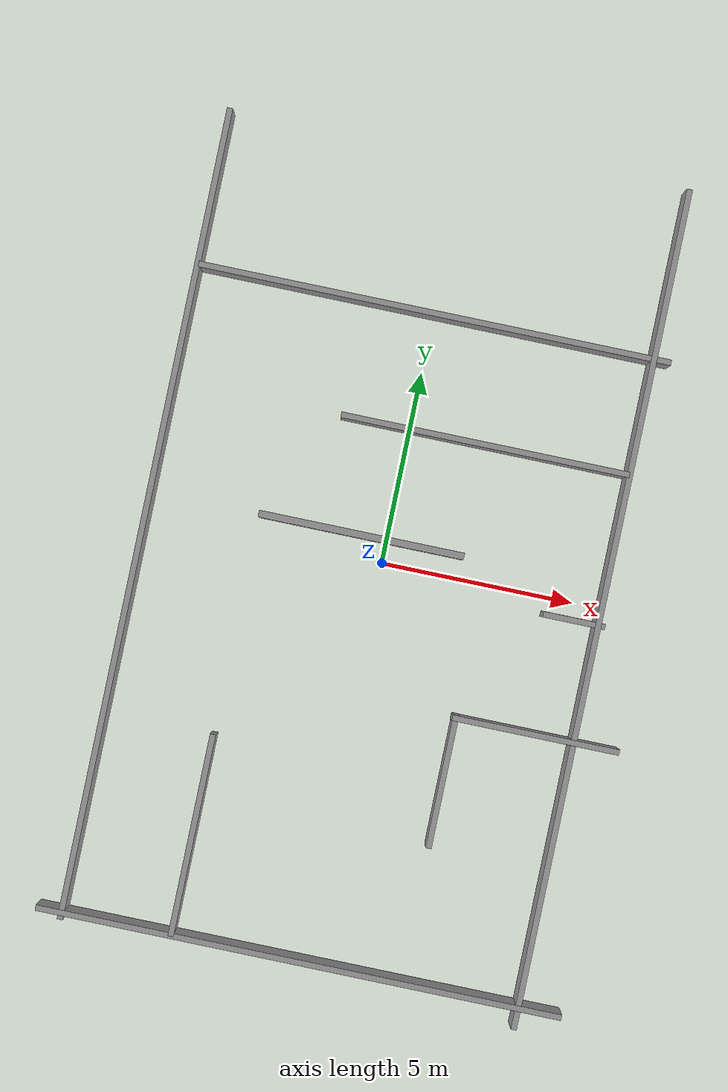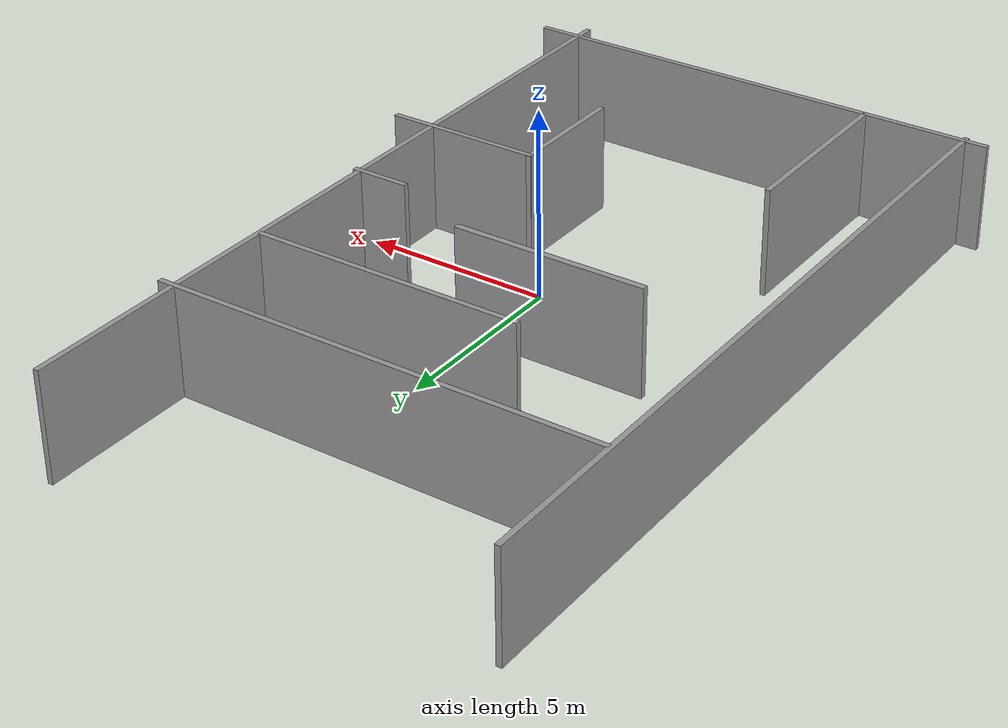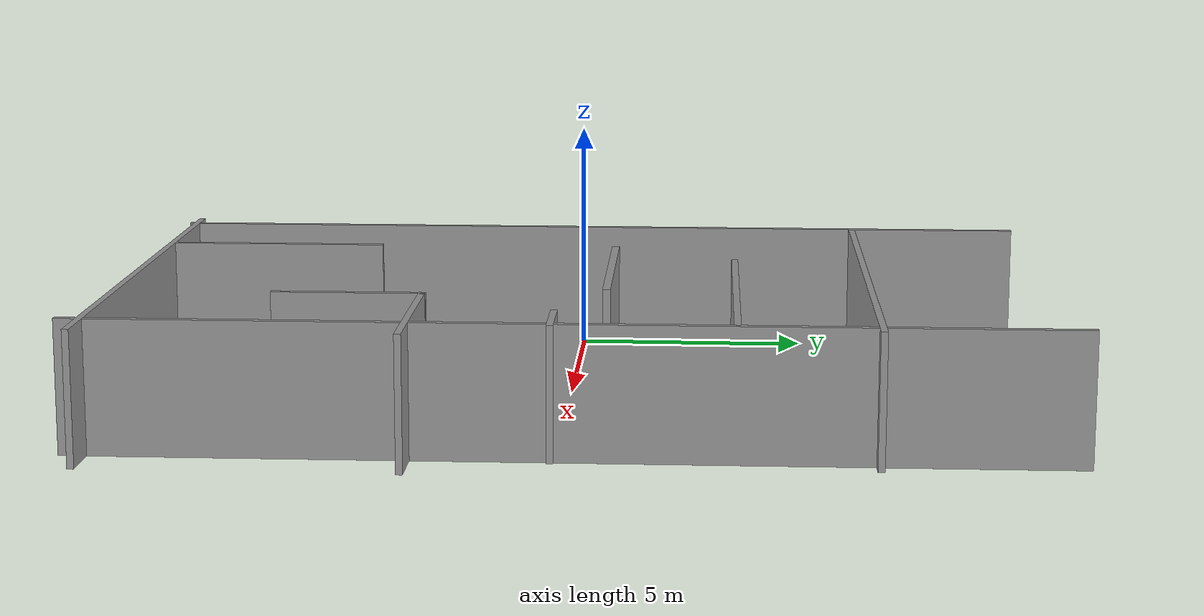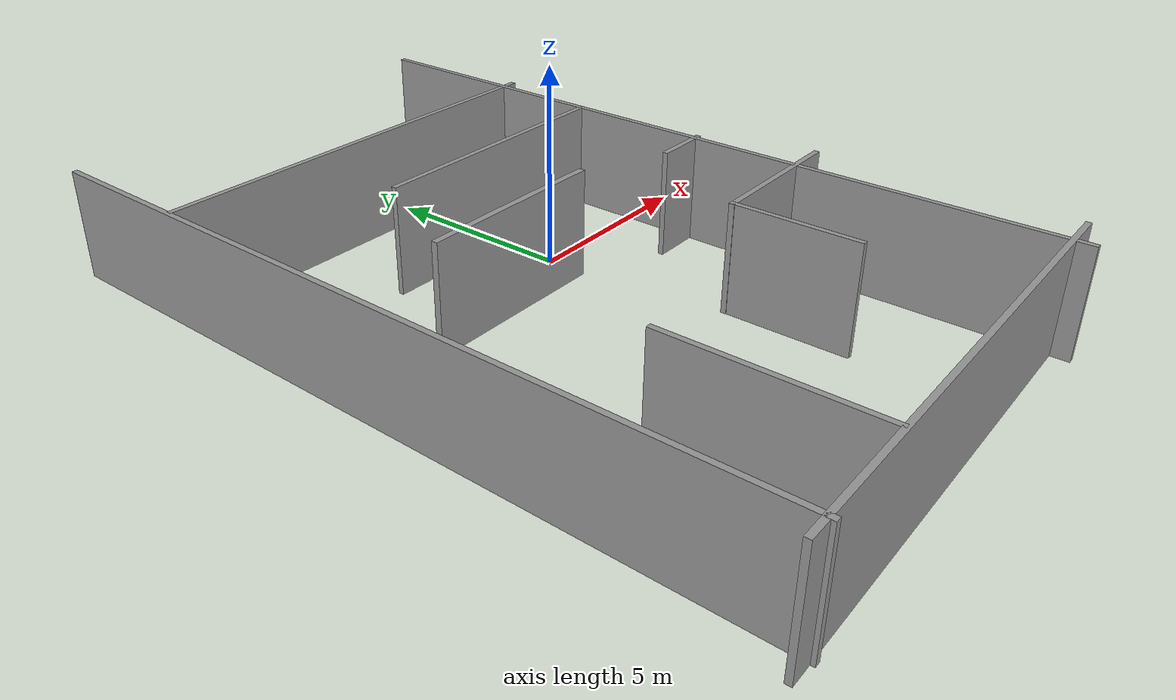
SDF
<?xml version='1.0'?>
<sdf version='1.7'>
  <model name='maze_medium_spacious'>
    <link name='Wall_11'>
      <pose>5.10281 -0.422662 0 0 -0 0</pose>
      <self_collide>0</self_collide>
      <enable_wind>0</enable_wind>
      <kinematic>0</kinematic>
      <inertial>
        <inertia>
          <ixx>0</ixx>
          <ixy>0</ixy>
          <ixz>0</ixz>
          <iyy>0</iyy>
          <iyz>0</iyz>
          <izz>0</izz>
        </inertia>
        <mass>0</mass>
        <pose>0 0 0 0 -0 0</pose>
      </inertial>
      <gravity>1</gravity>
      <visual name='Wall_11_Visual'>
        <pose>0 0 0.15 0 -0 0</pose>
        <geometry>
          <box>
            <size>1.61952 0.15 3</size>
          </box>
        </geometry>
        <material>
          <script>
            <uri>file://media/materials/scripts/gazebo.material</uri>
            <name>Gazebo/Grey</name>
          </script>
          <ambient>1 1 1 1</ambient>
          <shader type='pixel'>
            <normal_map>__default__</normal_map>
          </shader>
        </material>
        <meta>
          <layer>0</layer>
        </meta>
        <transparency>0</transparency>
        <cast_shadows>1</cast_shadows>
      </visual>
      <collision name='Wall_11_Collision'>
        <laser_retro>0</laser_retro>
        <max_contacts>10</max_contacts>
        <pose>0 0 0.15 0 -0 0</pose>
        <geometry>
          <box>
            <size>1.61952 0.15 3</size>
          </box>
        </geometry>
        <surface>
          <friction>
            <ode>
              <mu>1</mu>
              <mu2>1</mu2>
              <fdir1>0 0 0</fdir1>
              <slip1>0</slip1>
              <slip2>0</slip2>
            </ode>
            <torsional>
              <coefficient>1</coefficient>
              <patch_radius>0</patch_radius>
              <surface_radius>0</surface_radius>
              <use_patch_radius>1</use_patch_radius>
              <ode>
                <slip>0</slip>
              </ode>
            </torsional>
          </friction>
          <bounce>
            <restitution_coefficient>0</restitution_coefficient>
            <threshold>1e+06</threshold>
          </bounce>
          <contact>
            <collide_without_contact>0</collide_without_contact>
            <collide_without_contact_bitmask>1</collide_without_contact_bitmask>
            <collide_bitmask>1</collide_bitmask>
            <ode>
              <soft_cfm>0</soft_cfm>
              <soft_erp>0.2</soft_erp>
              <kp>1e+13</kp>
              <kd>1</kd>
              <max_vel>0.01</max_vel>
              <min_depth>0</min_depth>
            </ode>
            <bullet>
              <split_impulse>1</split_impulse>
              <split_impulse_penetration_threshold>-0.01</split_impulse_penetration_threshold>
              <soft_cfm>0</soft_cfm>
              <soft_erp>0.2</soft_erp>
              <kp>1e+13</kp>
              <kd>1</kd>
            </bullet>
          </contact>
        </surface>
      </collision>
    </link>
    <link name='Wall_11_clone'>
      <pose>1.95867 3.5092 0 0 -0 0</pose>
      <self_collide>0</self_collide>
      <enable_wind>0</enable_wind>
      <kinematic>0</kinematic>
      <inertial>
        <inertia>
          <ixx>0</ixx>
          <ixy>0</ixy>
          <ixz>0</ixz>
          <iyy>0</iyy>
          <iyz>0</iyz>
          <izz>0</izz>
        </inertia>
        <mass>0</mass>
        <pose>0 0 0 0 -0 0</pose>
      </inertial>
      <visual name='Wall_11_Visual'>
        <pose>0 0 0.15 0 -0 0</pose>
        <geometry>
          <box>
            <size>7.52703 0.15 3</size>
          </box>
        </geometry>
        <material>
          <script>
            <uri>file://media/materials/scripts/gazebo.material</uri>
            <name>Gazebo/Grey</name>
          </script>
          <ambient>1 1 1 1</ambient>
          <shader type='pixel'/>
        </material>
        <meta>
          <layer>0</layer>
        </meta>
        <transparency>0</transparency>
        <cast_shadows>1</cast_shadows>
      </visual>
      <collision name='Wall_11_Collision'>
        <laser_retro>0</laser_retro>
        <max_contacts>10</max_contacts>
        <pose>0 0 0.15 0 -0 0</pose>
        <geometry>
          <box>
            <size>7.52703 0.15 3</size>
          </box>
        </geometry>
        <surface>
          <friction>
            <ode>
              <mu>1</mu>
              <mu2>1</mu2>
              <fdir1>0 0 0</fdir1>
              <slip1>0</slip1>
              <slip2>0</slip2>
            </ode>
            <torsional>
              <coefficient>1</coefficient>
              <patch_radius>0</patch_radius>
              <surface_radius>0</surface_radius>
              <use_patch_radius>1</use_patch_radius>
              <ode>
                <slip>0</slip>
              </ode>
            </torsional>
          </friction>
          <bounce>
            <restitution_coefficient>0</restitution_coefficient>
            <threshold>1e+06</threshold>
          </bounce>
          <contact>
            <collide_without_contact>0</collide_without_contact>
            <collide_without_contact_bitmask>1</collide_without_contact_bitmask>
            <collide_bitmask>1</collide_bitmask>
            <ode>
              <soft_cfm>0</soft_cfm>
              <soft_erp>0.2</soft_erp>
              <kp>1e+13</kp>
              <kd>1</kd>
              <max_vel>0.01</max_vel>
              <min_depth>0</min_depth>
            </ode>
            <bullet>
              <split_impulse>1</split_impulse>
              <split_impulse_penetration_threshold>-0.01</split_impulse_penetration_threshold>
              <soft_cfm>0</soft_cfm>
              <soft_erp>0.2</soft_erp>
              <kp>1e+13</kp>
              <kd>1</kd>
            </bullet>
          </contact>
        </surface>
      </collision>
    </link>
    <link name='Wall_11_clone_0'>
      <pose>4.74482 -3.48754 0 0 -0 0</pose>
      <self_collide>0</self_collide>
      <enable_wind>0</enable_wind>
      <kinematic>0</kinematic>
      <inertial>
        <inertia>
          <ixx>0</ixx>
          <ixy>0</ixy>
          <ixz>0</ixz>
          <iyy>0</iyy>
          <iyz>0</iyz>
          <izz>0</izz>
        </inertia>
        <mass>0</mass>
        <pose>0 0 0 0 -0 0</pose>
      </inertial>
      <visual name='Wall_11_Visual'>
        <pose>0 0 0.15 0 -0 0</pose>
        <geometry>
          <box>
            <size>4.36242 0.15 3</size>
          </box>
        </geometry>
        <material>
          <script>
            <uri>file://media/materials/scripts/gazebo.material</uri>
            <name>Gazebo/Grey</name>
          </script>
          <ambient>1 1 1 1</ambient>
          <shader type='pixel'/>
        </material>
        <meta>
          <layer>0</layer>
        </meta>
        <transparency>0</transparency>
        <cast_shadows>1</cast_shadows>
      </visual>
      <collision name='Wall_11_Collision'>
        <laser_retro>0</laser_retro>
        <max_contacts>10</max_contacts>
        <pose>0 0 0.15 0 -0 0</pose>
        <geometry>
          <box>
            <size>4.36242 0.15 3</size>
          </box>
        </geometry>
        <surface>
          <friction>
            <ode>
              <mu>1</mu>
              <mu2>1</mu2>
              <fdir1>0 0 0</fdir1>
              <slip1>0</slip1>
              <slip2>0</slip2>
            </ode>
            <torsional>
              <coefficient>1</coefficient>
              <patch_radius>0</patch_radius>
              <surface_radius>0</surface_radius>
              <use_patch_radius>1</use_patch_radius>
              <ode>
                <slip>0</slip>
              </ode>
            </torsional>
          </friction>
          <bounce>
            <restitution_coefficient>0</restitution_coefficient>
            <threshold>1e+06</threshold>
          </bounce>
          <contact>
            <collide_without_contact>0</collide_without_contact>
            <collide_without_contact_bitmask>1</collide_without_contact_bitmask>
            <collide_bitmask>1</collide_bitmask>
            <ode>
              <soft_cfm>0</soft_cfm>
              <soft_erp>0.2</soft_erp>
              <kp>1e+13</kp>
              <kd>1</kd>
              <max_vel>0.01</max_vel>
              <min_depth>0</min_depth>
            </ode>
            <bullet>
              <split_impulse>1</split_impulse>
              <split_impulse_penetration_threshold>-0.01</split_impulse_penetration_threshold>
              <soft_cfm>0</soft_cfm>
              <soft_erp>0.2</soft_erp>
              <kp>1e+13</kp>
              <kd>1</kd>
            </bullet>
          </contact>
        </surface>
      </collision>
    </link>
    <link name='Wall_12'>
      <pose>2.65231 -5.14363 0 0 0 -1.5708</pose>
      <self_collide>0</self_collide>
      <enable_wind>0</enable_wind>
      <kinematic>0</kinematic>
      <inertial>
        <inertia>
          <ixx>0</ixx>
          <ixy>0</ixy>
          <ixz>0</ixz>
          <iyy>0</iyy>
          <iyz>0</iyz>
          <izz>0</izz>
        </inertia>
        <mass>0</mass>
        <pose>0 0 0 0 -0 0</pose>
      </inertial>
      <visual name='Wall_12_Visual'>
        <pose>0 0 0.15 0 -0 0</pose>
        <geometry>
          <box>
            <size>3.4719 0.15 3</size>
          </box>
        </geometry>
        <material>
          <script>
            <uri>file://media/materials/scripts/gazebo.material</uri>
            <name>Gazebo/Grey</name>
          </script>
          <ambient>1 1 1 1</ambient>
          <shader type='pixel'/>
        </material>
        <meta>
          <layer>0</layer>
        </meta>
        <transparency>0</transparency>
        <cast_shadows>1</cast_shadows>
      </visual>
      <collision name='Wall_12_Collision'>
        <laser_retro>0</laser_retro>
        <max_contacts>10</max_contacts>
        <pose>0 0 0.15 0 -0 0</pose>
        <geometry>
          <box>
            <size>3.4719 0.15 3</size>
          </box>
        </geometry>
        <surface>
          <friction>
            <ode>
              <mu>1</mu>
              <mu2>1</mu2>
              <fdir1>0 0 0</fdir1>
              <slip1>0</slip1>
              <slip2>0</slip2>
            </ode>
            <torsional>
              <coefficient>1</coefficient>
              <patch_radius>0</patch_radius>
              <surface_radius>0</surface_radius>
              <use_patch_radius>1</use_patch_radius>
              <ode>
                <slip>0</slip>
              </ode>
            </torsional>
          </friction>
          <bounce>
            <restitution_coefficient>0</restitution_coefficient>
            <threshold>1e+06</threshold>
          </bounce>
          <contact>
            <collide_without_contact>0</collide_without_contact>
            <collide_without_contact_bitmask>1</collide_without_contact_bitmask>
            <collide_bitmask>1</collide_bitmask>
            <ode>
              <soft_cfm>0</soft_cfm>
              <soft_erp>0.2</soft_erp>
              <kp>1e+13</kp>
              <kd>1</kd>
              <max_vel>0.01</max_vel>
              <min_depth>0</min_depth>
            </ode>
            <bullet>
              <split_impulse>1</split_impulse>
              <split_impulse_penetration_threshold>-0.01</split_impulse_penetration_threshold>
              <soft_cfm>0</soft_cfm>
              <soft_erp>0.2</soft_erp>
              <kp>1e+13</kp>
              <kd>1</kd>
            </bullet>
          </contact>
        </surface>
      </collision>
    </link>
    <link name='Wall_12_clone'>
      <pose>-3.33045 -7.79527 0 0 0 -1.5708</pose>
      <self_collide>0</self_collide>
      <enable_wind>0</enable_wind>
      <kinematic>0</kinematic>
      <inertial>
        <inertia>
          <ixx>0</ixx>
          <ixy>0</ixy>
          <ixz>0</ixz>
          <iyy>0</iyy>
          <iyz>0</iyz>
          <izz>0</izz>
        </inertia>
        <mass>0</mass>
        <pose>0 0 0 0 -0 0</pose>
      </inertial>
      <visual name='Wall_12_Visual'>
        <pose>0 0 0.15 0 -0 0</pose>
        <geometry>
          <box>
            <size>5.27052 0.15 3</size>
          </box>
        </geometry>
        <material>
          <script>
            <uri>file://media/materials/scripts/gazebo.material</uri>
            <name>Gazebo/Grey</name>
          </script>
          <ambient>1 1 1 1</ambient>
          <shader type='pixel'/>
        </material>
        <meta>
          <layer>0</layer>
        </meta>
        <transparency>0</transparency>
        <cast_shadows>1</cast_shadows>
      </visual>
      <collision name='Wall_12_Collision'>
        <laser_retro>0</laser_retro>
        <max_contacts>10</max_contacts>
        <pose>0 0 0.15 0 -0 0</pose>
        <geometry>
          <box>
            <size>5.27052 0.15 3</size>
          </box>
        </geometry>
        <surface>
          <friction>
            <ode>
              <mu>1</mu>
              <mu2>1</mu2>
              <fdir1>0 0 0</fdir1>
              <slip1>0</slip1>
              <slip2>0</slip2>
            </ode>
            <torsional>
              <coefficient>1</coefficient>
              <patch_radius>0</patch_radius>
              <surface_radius>0</surface_radius>
              <use_patch_radius>1</use_patch_radius>
              <ode>
                <slip>0</slip>
              </ode>
            </torsional>
          </friction>
          <bounce>
            <restitution_coefficient>0</restitution_coefficient>
            <threshold>1e+06</threshold>
          </bounce>
          <contact>
            <collide_without_contact>0</collide_without_contact>
            <collide_without_contact_bitmask>1</collide_without_contact_bitmask>
            <collide_bitmask>1</collide_bitmask>
            <ode>
              <soft_cfm>0</soft_cfm>
              <soft_erp>0.2</soft_erp>
              <kp>1e+13</kp>
              <kd>1</kd>
              <max_vel>0.01</max_vel>
              <min_depth>0</min_depth>
            </ode>
            <bullet>
              <split_impulse>1</split_impulse>
              <split_impulse_penetration_threshold>-0.01</split_impulse_penetration_threshold>
              <soft_cfm>0</soft_cfm>
              <soft_erp>0.2</soft_erp>
              <kp>1e+13</kp>
              <kd>1</kd>
            </bullet>
          </contact>
        </surface>
      </collision>
    </link>
    <link name='Wall_4'>
      <pose>0.00675 -10.4191 0 0 -0 0</pose>
      <self_collide>0</self_collide>
      <enable_wind>0</enable_wind>
      <kinematic>0</kinematic>
      <inertial>
        <inertia>
          <ixx>0</ixx>
          <ixy>0</ixy>
          <ixz>0</ixz>
          <iyy>0</iyy>
          <iyz>0</iyz>
          <izz>0</izz>
        </inertia>
        <mass>0</mass>
        <pose>0 0 0 0 -0 0</pose>
      </inertial>
      <visual name='Wall_4_Visual'>
        <pose>0 0 0.15 0 -0 0</pose>
        <geometry>
          <box>
            <size>13.7227 0.15 3</size>
          </box>
        </geometry>
        <material>
          <script>
            <uri>file://media/materials/scripts/gazebo.material</uri>
            <name>Gazebo/Grey</name>
          </script>
          <ambient>1 1 1 1</ambient>
          <shader type='pixel'/>
        </material>
        <meta>
          <layer>0</layer>
        </meta>
        <transparency>0</transparency>
        <cast_shadows>1</cast_shadows>
      </visual>
      <collision name='Wall_4_Collision'>
        <laser_retro>0</laser_retro>
        <max_contacts>10</max_contacts>
        <pose>0 0 0.15 0 -0 0</pose>
        <geometry>
          <box>
            <size>13.7227 0.15 3</size>
          </box>
        </geometry>
        <surface>
          <friction>
            <ode>
              <mu>1</mu>
              <mu2>1</mu2>
              <fdir1>0 0 0</fdir1>
              <slip1>0</slip1>
              <slip2>0</slip2>
            </ode>
            <torsional>
              <coefficient>1</coefficient>
              <patch_radius>0</patch_radius>
              <surface_radius>0</surface_radius>
              <use_patch_radius>1</use_patch_radius>
              <ode>
                <slip>0</slip>
              </ode>
            </torsional>
          </friction>
          <bounce>
            <restitution_coefficient>0</restitution_coefficient>
            <threshold>1e+06</threshold>
          </bounce>
          <contact>
            <collide_without_contact>0</collide_without_contact>
            <collide_without_contact_bitmask>1</collide_without_contact_bitmask>
            <collide_bitmask>1</collide_bitmask>
            <ode>
              <soft_cfm>0</soft_cfm>
              <soft_erp>0.2</soft_erp>
              <kp>1e+13</kp>
              <kd>1</kd>
              <max_vel>0.01</max_vel>
              <min_depth>0</min_depth>
            </ode>
            <bullet>
              <split_impulse>1</split_impulse>
              <split_impulse_penetration_threshold>-0.01</split_impulse_penetration_threshold>
              <soft_cfm>0</soft_cfm>
              <soft_erp>0.2</soft_erp>
              <kp>1e+13</kp>
              <kd>1</kd>
            </bullet>
          </contact>
        </surface>
      </collision>
    </link>
    <link name='Wall_5'>
      <pose>5.73269 1e-05 0 0 -0 1.5708</pose>
      <self_collide>0</self_collide>
      <enable_wind>0</enable_wind>
      <kinematic>0</kinematic>
      <inertial>
        <inertia>
          <ixx>0</ixx>
          <ixy>0</ixy>
          <ixz>0</ixz>
          <iyy>0</iyy>
          <iyz>0</iyz>
          <izz>0</izz>
        </inertia>
        <mass>0</mass>
        <pose>0 0 0 0 -0 0</pose>
      </inertial>
      <visual name='Wall_5_Visual'>
        <pose>0 0 0.15 0 -0 0</pose>
        <geometry>
          <box>
            <size>21.9336 0.15 3</size>
          </box>
        </geometry>
        <material>
          <script>
            <uri>file://media/materials/scripts/gazebo.material</uri>
            <name>Gazebo/Grey</name>
          </script>
          <ambient>1 1 1 1</ambient>
          <shader type='pixel'/>
        </material>
        <meta>
          <layer>0</layer>
        </meta>
        <transparency>0</transparency>
        <cast_shadows>1</cast_shadows>
      </visual>
      <collision name='Wall_5_Collision'>
        <laser_retro>0</laser_retro>
        <max_contacts>10</max_contacts>
        <pose>0 0 0.15 0 -0 0</pose>
        <geometry>
          <box>
            <size>21.9336 0.15 3</size>
          </box>
        </geometry>
        <surface>
          <friction>
            <ode>
              <mu>1</mu>
              <mu2>1</mu2>
              <fdir1>0 0 0</fdir1>
              <slip1>0</slip1>
              <slip2>0</slip2>
            </ode>
            <torsional>
              <coefficient>1</coefficient>
              <patch_radius>0</patch_radius>
              <surface_radius>0</surface_radius>
              <use_patch_radius>1</use_patch_radius>
              <ode>
                <slip>0</slip>
              </ode>
            </torsional>
          </friction>
          <bounce>
            <restitution_coefficient>0</restitution_coefficient>
            <threshold>1e+06</threshold>
          </bounce>
          <contact>
            <collide_without_contact>0</collide_without_contact>
            <collide_without_contact_bitmask>1</collide_without_contact_bitmask>
            <collide_bitmask>1</collide_bitmask>
            <ode>
              <soft_cfm>0</soft_cfm>
              <soft_erp>0.2</soft_erp>
              <kp>1e+13</kp>
              <kd>1</kd>
              <max_vel>0.01</max_vel>
              <min_depth>0</min_depth>
            </ode>
            <bullet>
              <split_impulse>1</split_impulse>
              <split_impulse_penetration_threshold>-0.01</split_impulse_penetration_threshold>
              <soft_cfm>0</soft_cfm>
              <soft_erp>0.2</soft_erp>
              <kp>1e+13</kp>
              <kd>1</kd>
            </bullet>
          </contact>
        </surface>
      </collision>
    </link>
    <link name='Wall_6'>
      <pose>0.006759 6.53254 -0 0 -0 3.14159</pose>
      <self_collide>0</self_collide>
      <enable_wind>0</enable_wind>
      <kinematic>0</kinematic>
      <inertial>
        <inertia>
          <ixx>0</ixx>
          <ixy>0</ixy>
          <ixz>0</ixz>
          <iyy>0</iyy>
          <iyz>0</iyz>
          <izz>0</izz>
        </inertia>
        <mass>0</mass>
        <pose>0 0 0 0 -0 0</pose>
      </inertial>
      <visual name='Wall_6_Visual'>
        <pose>0 0 0.15 0 -0 0</pose>
        <geometry>
          <box>
            <size>12.3327 0.15 3</size>
          </box>
        </geometry>
        <material>
          <script>
            <uri>file://media/materials/scripts/gazebo.material</uri>
            <name>Gazebo/Grey</name>
          </script>
          <ambient>1 1 1 1</ambient>
          <shader type='pixel'/>
        </material>
        <meta>
          <layer>0</layer>
        </meta>
        <transparency>0</transparency>
        <cast_shadows>1</cast_shadows>
      </visual>
      <collision name='Wall_6_Collision'>
        <laser_retro>0</laser_retro>
        <max_contacts>10</max_contacts>
        <pose>0 0 0.15 0 -0 0</pose>
        <geometry>
          <box>
            <size>12.3327 0.15 3</size>
          </box>
        </geometry>
        <surface>
          <friction>
            <ode>
              <mu>1</mu>
              <mu2>1</mu2>
              <fdir1>0 0 0</fdir1>
              <slip1>0</slip1>
              <slip2>0</slip2>
            </ode>
            <torsional>
              <coefficient>1</coefficient>
              <patch_radius>0</patch_radius>
              <surface_radius>0</surface_radius>
              <use_patch_radius>1</use_patch_radius>
              <ode>
                <slip>0</slip>
              </ode>
            </torsional>
          </friction>
          <bounce>
            <restitution_coefficient>0</restitution_coefficient>
            <threshold>1e+06</threshold>
          </bounce>
          <contact>
            <collide_without_contact>0</collide_without_contact>
            <collide_without_contact_bitmask>1</collide_without_contact_bitmask>
            <collide_bitmask>1</collide_bitmask>
            <ode>
              <soft_cfm>0</soft_cfm>
              <soft_erp>0.2</soft_erp>
              <kp>1e+13</kp>
              <kd>1</kd>
              <max_vel>0.01</max_vel>
              <min_depth>0</min_depth>
            </ode>
            <bullet>
              <split_impulse>1</split_impulse>
              <split_impulse_penetration_threshold>-0.01</split_impulse_penetration_threshold>
              <soft_cfm>0</soft_cfm>
              <soft_erp>0.2</soft_erp>
              <kp>1e+13</kp>
              <kd>1</kd>
            </bullet>
          </contact>
        </surface>
      </collision>
    </link>
    <link name='Wall_7'>
      <pose>-6.18833 1.2e-05 0 0 0 -1.5708</pose>
      <self_collide>0</self_collide>
      <enable_wind>0</enable_wind>
      <kinematic>0</kinematic>
      <inertial>
        <inertia>
          <ixx>0</ixx>
          <ixy>0</ixy>
          <ixz>0</ixz>
          <iyy>0</iyy>
          <iyz>0</iyz>
          <izz>0</izz>
        </inertia>
        <mass>0</mass>
        <pose>0 0 0 0 -0 0</pose>
      </inertial>
      <gravity>1</gravity>
      <visual name='Wall_7_Visual'>
        <pose>0 0 0.15 0 -0 0</pose>
        <geometry>
          <box>
            <size>21.1792 0.15 3</size>
          </box>
        </geometry>
        <material>
          <script>
            <uri>file://media/materials/scripts/gazebo.material</uri>
            <name>Gazebo/Grey</name>
          </script>
          <ambient>1 1 1 1</ambient>
          <shader type='pixel'>
            <normal_map>__default__</normal_map>
          </shader>
          <diffuse>0.7 0.7 0.7 1</diffuse>
          <specular>0.01 0.01 0.01 1</specular>
          <emissive>0 0 0 1</emissive>
        </material>
        <meta>
          <layer>0</layer>
        </meta>
        <transparency>0</transparency>
        <cast_shadows>1</cast_shadows>
      </visual>
      <collision name='Wall_7_Collision'>
        <laser_retro>0</laser_retro>
        <max_contacts>10</max_contacts>
        <pose>0 0 0.15 0 -0 0</pose>
        <geometry>
          <box>
            <size>22.8621 0.15 3</size>
          </box>
        </geometry>
        <surface>
          <friction>
            <ode>
              <mu>1</mu>
              <mu2>1</mu2>
              <fdir1>0 0 0</fdir1>
              <slip1>0</slip1>
              <slip2>0</slip2>
            </ode>
            <torsional>
              <coefficient>1</coefficient>
              <patch_radius>0</patch_radius>
              <surface_radius>0</surface_radius>
              <use_patch_radius>1</use_patch_radius>
              <ode>
                <slip>0</slip>
              </ode>
            </torsional>
          </friction>
          <bounce>
            <restitution_coefficient>0</restitution_coefficient>
            <threshold>1e+06</threshold>
          </bounce>
          <contact>
            <collide_without_contact>0</collide_without_contact>
            <collide_without_contact_bitmask>1</collide_without_contact_bitmask>
            <collide_bitmask>1</collide_bitmask>
            <ode>
              <soft_cfm>0</soft_cfm>
              <soft_erp>0.2</soft_erp>
              <kp>1e+13</kp>
              <kd>1</kd>
              <max_vel>0.01</max_vel>
              <min_depth>0</min_depth>
            </ode>
            <bullet>
              <split_impulse>1</split_impulse>
              <split_impulse_penetration_threshold>-0.01</split_impulse_penetration_threshold>
              <soft_cfm>0</soft_cfm>
              <soft_erp>0.2</soft_erp>
              <kp>1e+13</kp>
              <kd>1</kd>
            </bullet>
          </contact>
        </surface>
      </collision>
    </link>
    <link name='Wall_9'>
      <pose>-0.665756 0.603249 0 0 -0 0</pose>
      <self_collide>0</self_collide>
      <enable_wind>0</enable_wind>
      <kinematic>0</kinematic>
      <inertial>
        <inertia>
          <ixx>0</ixx>
          <ixy>0</ixy>
          <ixz>0</ixz>
          <iyy>0</iyy>
          <iyz>0</iyz>
          <izz>0</izz>
        </inertia>
        <mass>0</mass>
        <pose>0 0 0 0 -0 0</pose>
      </inertial>
      <visual name='Wall_9_Visual'>
        <pose>0 0 0.15 0 -0 0</pose>
        <geometry>
          <box>
            <size>5.36497 0.179591 3</size>
          </box>
        </geometry>
        <material>
          <script>
            <uri>file://media/materials/scripts/gazebo.material</uri>
            <name>Gazebo/Grey</name>
          </script>
          <ambient>1 1 1 1</ambient>
          <shader type='pixel'/>
        </material>
        <meta>
          <layer>0</layer>
        </meta>
        <transparency>0</transparency>
        <cast_shadows>1</cast_shadows>
      </visual>
      <collision name='Wall_9_Collision'>
        <laser_retro>0</laser_retro>
        <max_contacts>10</max_contacts>
        <pose>0 0 0.15 0 -0 0</pose>
        <geometry>
          <box>
            <size>5.36497 0.179591 3</size>
          </box>
        </geometry>
        <surface>
          <friction>
            <ode>
              <mu>1</mu>
              <mu2>1</mu2>
              <fdir1>0 0 0</fdir1>
              <slip1>0</slip1>
              <slip2>0</slip2>
            </ode>
            <torsional>
              <coefficient>1</coefficient>
              <patch_radius>0</patch_radius>
              <surface_radius>0</surface_radius>
              <use_patch_radius>1</use_patch_radius>
              <ode>
                <slip>0</slip>
              </ode>
            </torsional>
          </friction>
          <bounce>
            <restitution_coefficient>0</restitution_coefficient>
            <threshold>1e+06</threshold>
          </bounce>
          <contact>
            <collide_without_contact>0</collide_without_contact>
            <collide_without_contact_bitmask>1</collide_without_contact_bitmask>
            <collide_bitmask>1</collide_bitmask>
            <ode>
              <soft_cfm>0</soft_cfm>
              <soft_erp>0.2</soft_erp>
              <kp>1e+13</kp>
              <kd>1</kd>
              <max_vel>0.01</max_vel>
              <min_depth>0</min_depth>
            </ode>
            <bullet>
              <split_impulse>1</split_impulse>
              <split_impulse_penetration_threshold>-0.01</split_impulse_penetration_threshold>
              <soft_cfm>0</soft_cfm>
              <soft_erp>0.2</soft_erp>
              <kp>1e+13</kp>
              <kd>1</kd>
            </bullet>
          </contact>
        </surface>
      </collision>
    </link>
    <static>1</static>
    <allow_auto_disable>1</allow_auto_disable>
  </model>
</sdf>
